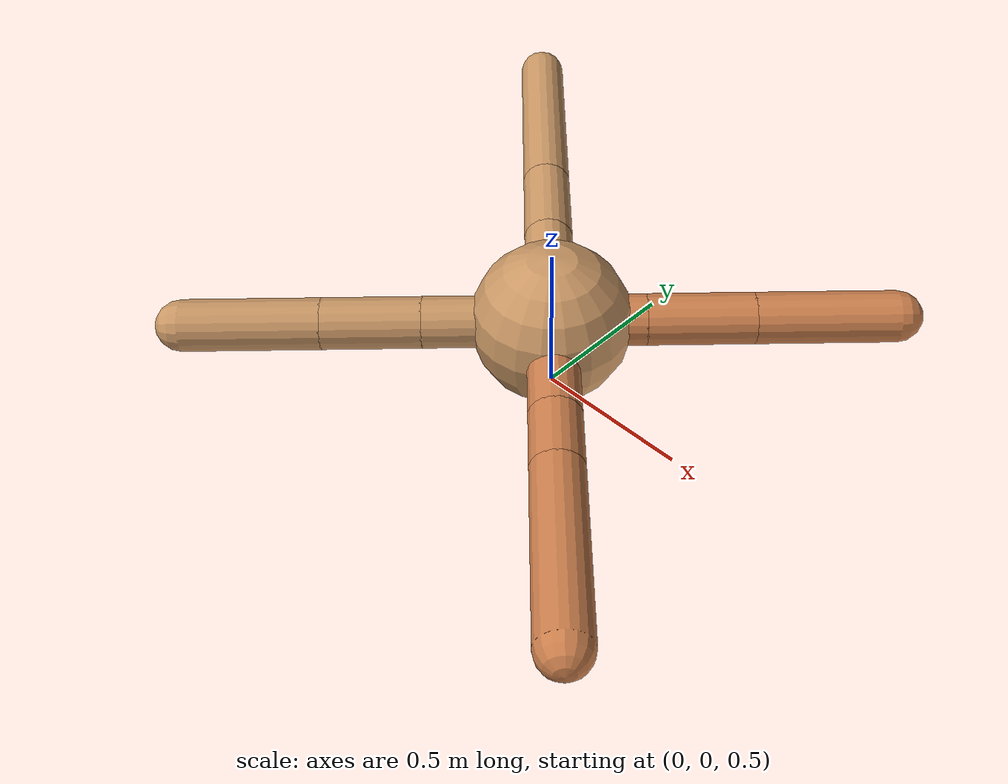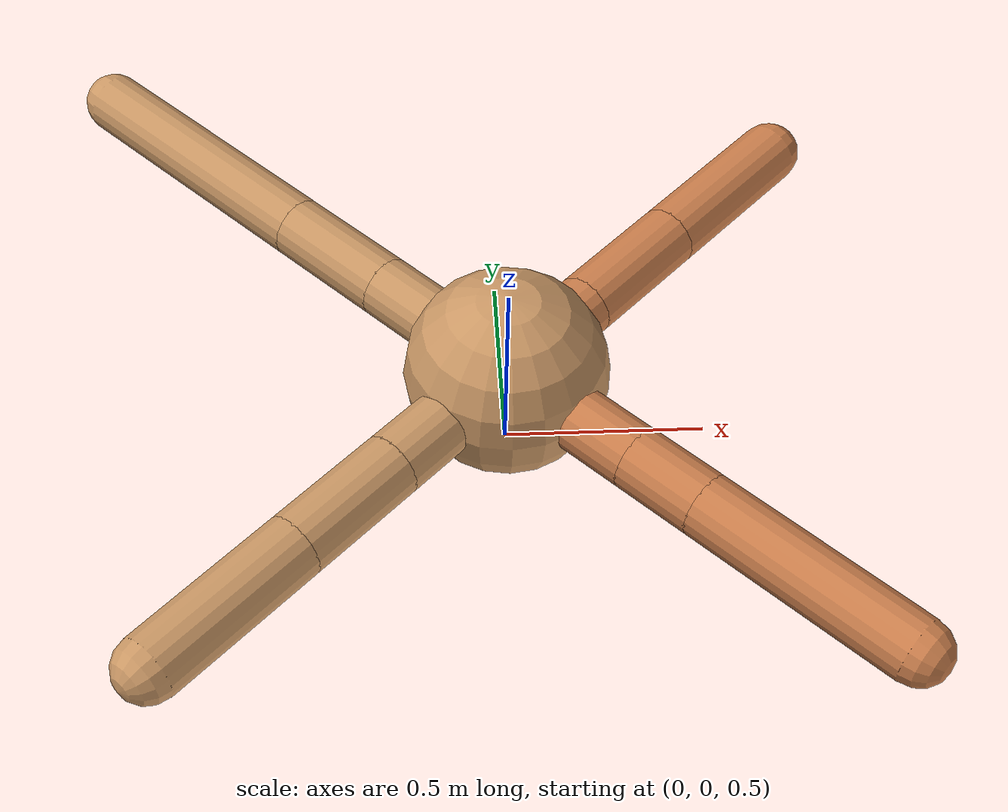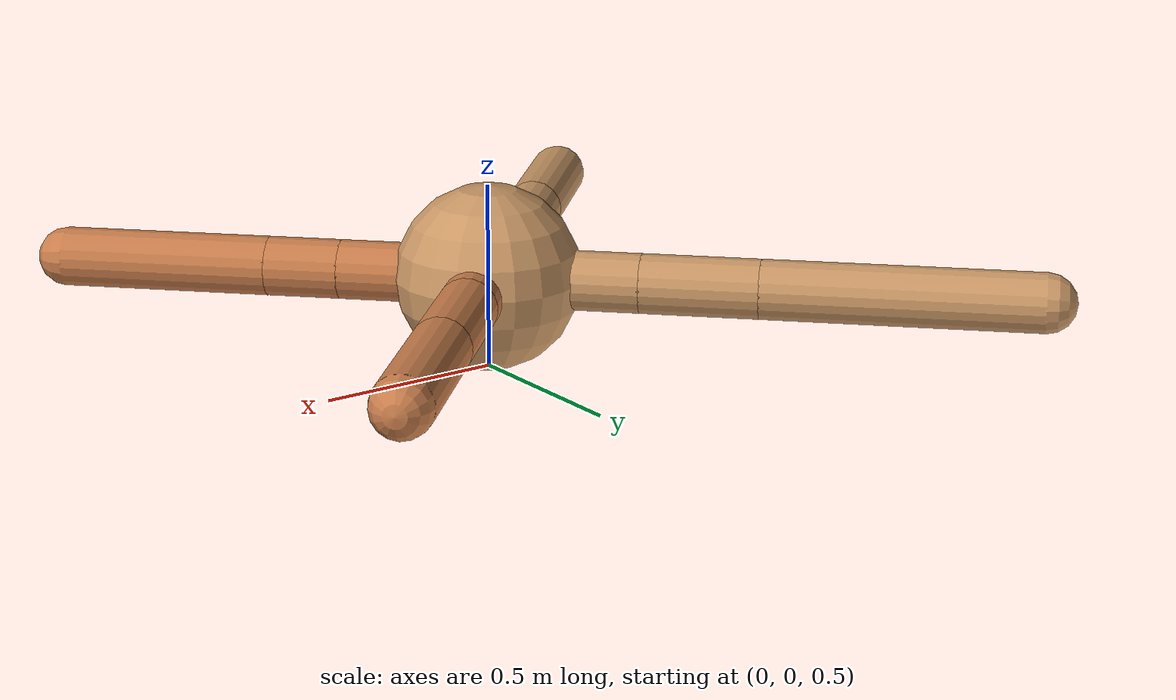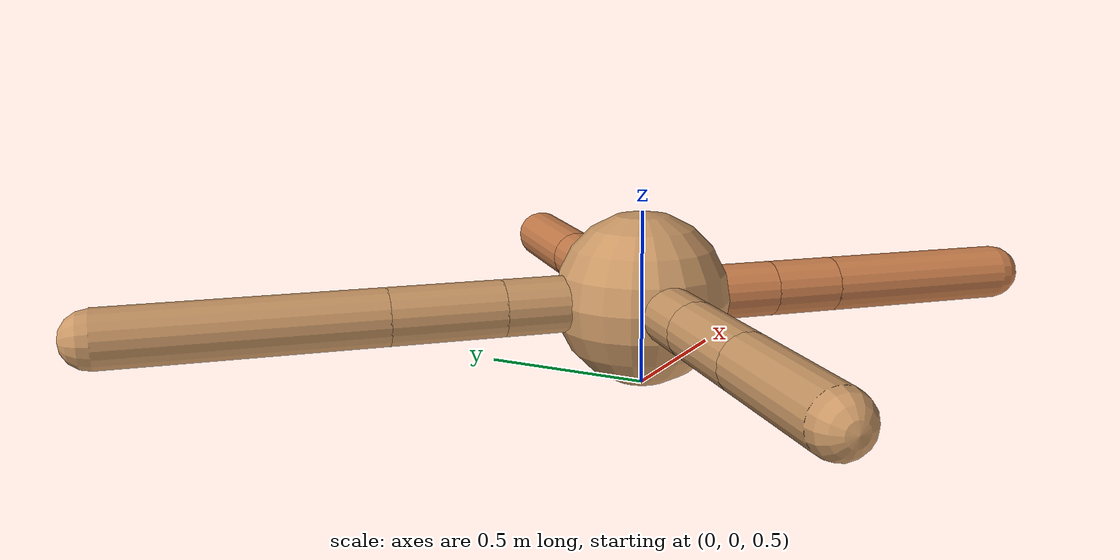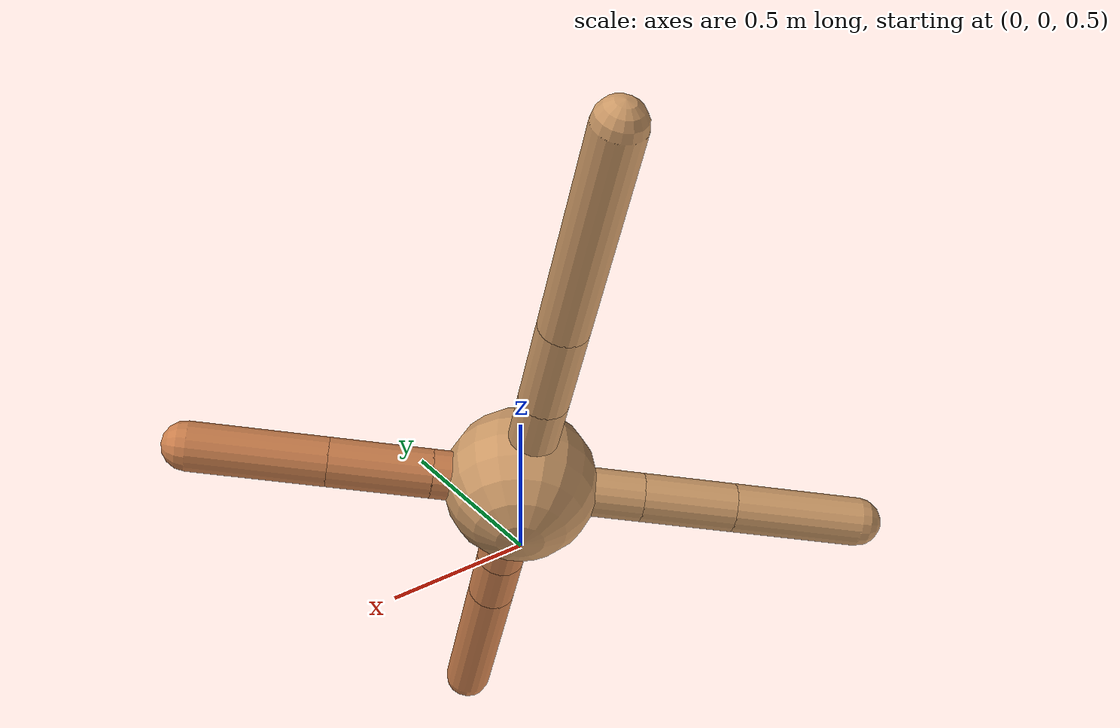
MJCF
<mujoco model="ant">
  <compiler angle="degree" coordinate="local" inertiafromgeom="true" />
  <option integrator="RK4" timestep="0.01" />
  <custom>
    <numeric data="0.0 0.0 0.55 1.0 0.0 0.0 0.0 0.0 1.0 0.0 -1.0 0.0 -1.0 0.0 1.0" name="init_qpos" />
  </custom>
  <default>
    <joint armature="1" damping="1" limited="true" />
    <geom conaffinity="0" condim="3" density="5.0" friction="1.5 0.1 0.1" margin="0.01" rgba="0.8 0.6 0.4 1" />
  </default>
  <worldbody>
    <body name="torso" pos="0 0 0.75">
      <geom name="torso_geom" pos="0 0 0" size="0.25" type="sphere" />

      <body name="front_left_leg" pos="0 0 0">
        <geom fromto="0.0 0.0 0.0 0.20540287231542026 0.20540287231542026 0.0" name="aux_1_geom" size="0.08" type="capsule" rgba=".8 .5 .3 1" />
        <body name="aux_1" pos="0.20540287231542026 0.20540287231542026 0.0">
          <joint axis="0 0 1" name="hip_1" pos="0.0 0.0 0.0" range="-40 40" type="hinge" />
          <geom fromto="0.0 0.0 0.0 0.23555058281298058 0.23555058281298058 0.0" name="left_leg_geom" size="0.08" type="capsule" rgba=".8 .5 .3 1" />
          <body pos="0.23555058281298058 0.23555058281298058 0.0" name="front_left_foot">
            <joint axis="-1 1 0" name="ankle_1" pos="0.0 0.0 0.0" range="30 100" type="hinge" />
            <geom fromto="0.0 0.0 0.0 0.31088652105550174 0.31088652105550174 0.0" name="left_ankle_geom" size="0.08" type="capsule" rgba=".8 .5 .3 1" />
          </body>
        </body>
      </body>
      <body name="front_right_leg" pos="0 0 0">
        <geom fromto="0.0 0.0 0.0 -0.2886649378514119 0.2886649378514119 0.0" name="aux_2_geom" size="0.08" type="capsule" />
        <body name="aux_2" pos="-0.2886649378514119 0.2886649378514119 0.0">
          <joint axis="0 0 1" name="hip_2" pos="0.0 0.0 0.0" range="-40 40" type="hinge" />
          <geom fromto="0.0 0.0 0.0 -0.2223534689440573 0.2223534689440573 0.0" name="right_leg_geom" size="0.08" type="capsule" />
          <body pos="-0.2223534689440573 0.2223534689440573 0.0" name="front_right_foot">
            <joint axis="1 1 0" name="ankle_2" pos="0.0 0.0 0.0" range="-100 -30" type="hinge" />
            <geom fromto="0.0 0.0 0.0 -0.5214919045619005 0.5214919045619005 0.0" name="right_ankle_geom" size="0.08" type="capsule" />
          </body>
        </body>
      </body>
      <body name="left_back_leg" pos="0 0 0">
        <geom fromto="0.0 0.0 0.0 -0.280325661777762 -0.280325661777762 0.0" name="aux_3_geom" size="0.08" type="capsule" />
        <body name="aux_3" pos="-0.280325661777762 -0.280325661777762 0.0">
          <joint axis="0 0 1" name="hip_3" pos="0.0 0.0 0.0" range="-40 40" type="hinge" />
          <geom fromto="0.0 0.0 0.0 -0.2173445222319349 -0.2173445222319349 0.0" name="back_leg_geom" size="0.08" type="capsule" />
          <body pos="-0.2173445222319349 -0.2173445222319349 0.0" name="left_back_foot">
            <joint axis="-1 1 0" name="ankle_3" pos="0.0 0.0 0.0" range="-100 -30" type="hinge" />
            <geom fromto="0.0 0.0 0.0 -0.3014762972713053 -0.3014762972713053 0.0" name="third_ankle_geom" size="0.08" type="capsule" />
          </body>
        </body>
      </body>
      <body name="right_back_leg" pos="0 0 0">
        <geom fromto="0.0 0.0 0.0 0.2825279031238579 -0.2825279031238579 0.0" name="aux_4_geom" size="0.08" type="capsule" rgba=".8 .5 .3 1" />
        <body name="aux_4" pos="0.2825279031238579 -0.2825279031238579 0.0">
          <joint axis="0 0 1" name="hip_4" pos="0.0 0.0 0.0" range="-40 40" type="hinge" />
          <geom fromto="0.0 0.0 0.0 0.14056881560437523 -0.14056881560437523 0.0" name="rightback_leg_geom" size="0.08" type="capsule" rgba=".8 .5 .3 1" />
          <body pos="0.14056881560437523 -0.14056881560437523 0.0" name="right_back_foot">
            <joint axis="1 1 0" name="ankle_4" pos="0.0 0.0 0.0" range="30 100" type="hinge" />
            <geom fromto="0.0 0.0 0.0 0.3988580632034999 -0.3988580632034999 0.0" name="fourth_ankle_geom" size="0.08" type="capsule" rgba=".8 .5 .3 1" />
          </body>
        </body>
      </body>
    </body>
  </worldbody>
  <actuator>
    <motor ctrllimited="true" ctrlrange="-1.0 1.0" joint="hip_4" gear="150" />
    <motor ctrllimited="true" ctrlrange="-1.0 1.0" joint="ankle_4" gear="150" />
    <motor ctrllimited="true" ctrlrange="-1.0 1.0" joint="hip_1" gear="150" />
    <motor ctrllimited="true" ctrlrange="-1.0 1.0" joint="ankle_1" gear="150" />
    <motor ctrllimited="true" ctrlrange="-1.0 1.0" joint="hip_2" gear="150" />
    <motor ctrllimited="true" ctrlrange="-1.0 1.0" joint="ankle_2" gear="150" />
    <motor ctrllimited="true" ctrlrange="-1.0 1.0" joint="hip_3" gear="150" />
    <motor ctrllimited="true" ctrlrange="-1.0 1.0" joint="ankle_3" gear="150" />
  </actuator>
</mujoco>
